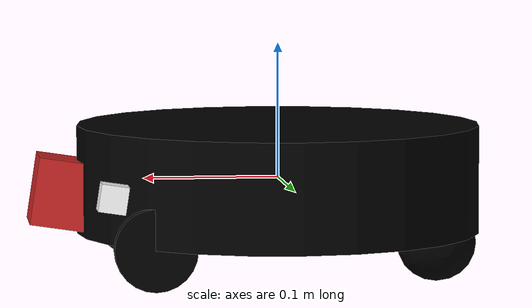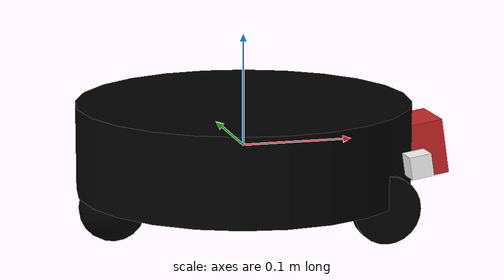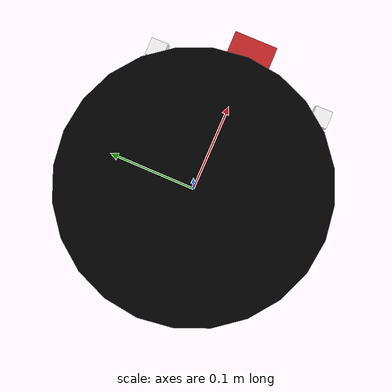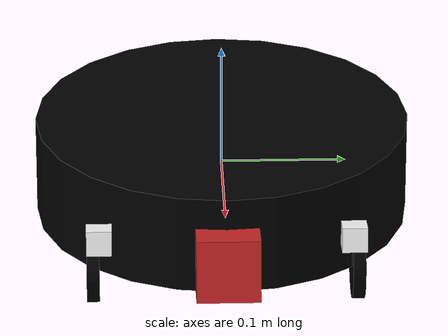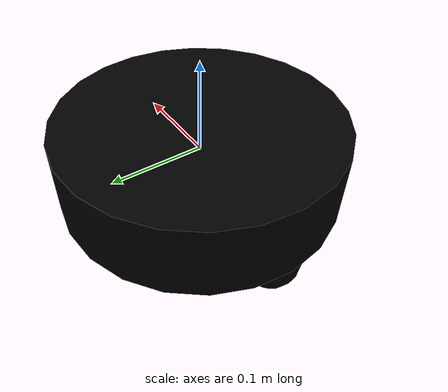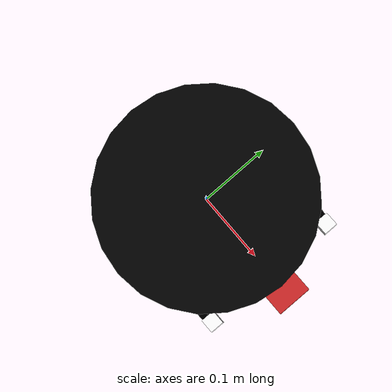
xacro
<?xml version="1.0"?>
<robot name="tango_xacro" xmlns:xacro="http://ros.org/wiki/xacro">

  <xacro:property name="body_diameter" value="0.3" />
  <xacro:property name="body_height" value="0.08" />
  <xacro:property name="traction_wheel_radius" value="0.03" />
  <xacro:property name="traction_wheel_width" value="0.01" />
  <xacro:property name="aux_wheel_radius" value="0.03" />
  <xacro:property name="camera_link" value="0.05" />

  <xacro:include filename="materials.xacro" />
  <xacro:include filename="inertials.xacro" />

  <xacro:macro name="inertial_cube" params="mass">
    <inertial>
      <mass value="${mass}" />
      <inertia ixx="1.0" ixy="0.0" ixz="0.0" iyy="1.0" iyz="0.0" izz="1.0" />
    </inertial>
  </xacro:macro>

  <link name="main_body">
    <visual>
      <geometry>
        <cylinder radius="${body_diameter/2}" length="${body_height}"/>
      </geometry>
      <material name="black"/>
    </visual>
    <collision>
      <geometry>
        <cylinder radius="${body_diameter/2}" length="${body_height}"/>
      </geometry>
    </collision>
  </link>

  <!-- Dummy link just for inertial purposes -->
  <link name="dummy_link">
    <visual>
      <geometry>
        <box size="0.05 0.05 0.05"/>
      </geometry>
      <origin xyz="0 0 0"/>
      <material name="white"/>
    </visual>
    <collision>
      <geometry>
        <box size="0.05 0.05 0.05"/>
      </geometry>
      <origin xyz="0 0 0"/>
    </collision>
    <xacro:inertial_cylinder mass="2" radius="${body_diameter/2}" height="${body_height}" />
  </link>

  <joint name="dummy_base_joint" type="fixed">
    <axis rpy="0 0 0" xyz="0 0 1"/>
    <parent link="main_body"/>
    <child link="dummy_link"/>
    <origin xyz="0 0 -0.02" />
  </joint>

  <xacro:macro name="front_sensor_link" params="name side y_pos">
    <link name="${name}_front_sensor">
      <visual>
        <geometry>
          <box size="0.02 0.02 0.02"/>
        </geometry>
        <origin xyz="-0.02 0 0" rpy="0 0 0"/>
        <material name="white"/>
      </visual>
      <collision>
        <geometry>
          <box size="0.02 0.02 0.02"/>
        </geometry>
        <origin xyz="-0.02 0 0" rpy="0 0 0"/>
      </collision>
    </link>

    <joint name="${side}_front_base_joint" type="fixed">
      <axis rpy="0 0 0" xyz="0 0 0"/>
      <parent link="main_body"/>
      <child link="${name}_front_sensor"/>
      <origin xyz="${body_diameter/2} ${side*y_pos} 0" rpy="0 -0.15 0" />
    </joint>

    <gazebo reference="${name}_front_sensor">
     <sensor type="ray" name="TeraRanger">
      <pose>0 0 0 0 0 0</pose>
      <visualize>true</visualize>
      <update_rate>50</update_rate>
      <ray>
         <scan>
            <horizontal>
               <samples>10</samples>
               <resolution>1</resolution>
               <min_angle>-0.14835</min_angle>
               <max_angle>0.14835</max_angle>
            </horizontal>
            <vertical>
               <samples>10</samples>
               <resolution>1</resolution>
               <min_angle>-0.14835</min_angle>
               <max_angle>0.14835</max_angle>
            </vertical>
         </scan>
         <range>
            <min>0.05</min>
            <max>2</max>
            <resolution>0.01</resolution>
         </range>
      </ray>
      <plugin filename="libgazebo_ros_range.so" name="gazebo_ros_range">
        <gaussianNoise>0.005</gaussianNoise>
        <alwaysOn>true</alwaysOn>
        <updateRate>50</updateRate>
        <topicName>sensor/${name}_ultrasonic_front</topicName>
        <frameName>${name}_front_sensor</frameName>
        <radiation>ULTRASOUND</radiation>
        <fov>0.2967</fov>
      </plugin>
     </sensor>
   </gazebo>

  </xacro:macro>

  <!-- Camera -->
  <link name="camera_link">
    <collision>
      <origin xyz="0 0 0" rpy="0 0 0"/>
      <geometry>
    <box size="${camera_link} ${camera_link} ${camera_link}"/>
      </geometry>
    </collision>
    <visual>
      <origin xyz="0 0 ${-camera_link}" rpy="0 0 0"/>
      <geometry>
    <box size="${camera_link} ${camera_link} ${camera_link}"/>
      </geometry>
      <material name="red"/>
    </visual>
    <inertial>
      <mass value="1e-5"/>
      <origin xyz="0 0 0" rpy="0 0 0"/>
      <inertia ixx="1e-6" ixy="0" ixz="0" iyy="1e-6" iyz="0" izz="1e-6" />
    </inertial>
  </link>

  <joint name="camera_joint" type="fixed">
    <axis xyz="0 1 0" />
    <origin xyz="${body_diameter/2} 0 ${body_height/2}" rpy="0 -0.15 0"/>
    <parent link="main_body"/>
    <child link="camera_link"/>
  </joint>

  <!-- camera -->
  <gazebo reference="camera_link">
    <sensor type="camera" name="camera1">
      <update_rate>30.0</update_rate>
      <camera name="head">
        <horizontal_fov>1.3962634</horizontal_fov>
        <image>
          <width>800</width>
          <height>800</height>
          <format>R8G8B8</format>
        </image>
        <clip>
          <near>0.02</near>
          <far>300</far>
        </clip>
        <noise>
          <type>gaussian</type>
          <!-- Noise is sampled independently per pixel on each frame.
               That pixel's noise value is added to each of its color
               channels, which at that point lie in the range [0,1]. -->
          <mean>0.0</mean>
          <stddev>0.007</stddev>
        </noise>
      </camera>
      <plugin name="camera_controller" filename="libgazebo_ros_camera.so">
        <alwaysOn>true</alwaysOn>
        <updateRate>0.0</updateRate>
        <cameraName>sensor/camera1</cameraName>
        <imageTopicName>image_raw</imageTopicName>
        <cameraInfoTopicName>camera_info</cameraInfoTopicName>
        <frameName>camera_link</frameName>
        <hackBaseline>0.07</hackBaseline>
        <distortionK1>0.0</distortionK1>
        <distortionK2>0.0</distortionK2>
        <distortionK3>0.0</distortionK3>
        <distortionT1>0.0</distortionT1>
        <distortionT2>0.0</distortionT2>
      </plugin>
    </sensor>
  </gazebo>

  <!-- IMU -->
  <gazebo>
    <plugin name="imu_plugin" filename="libgazebo_ros_imu.so">
      <alwaysOn>true</alwaysOn>
      <bodyName>main_body</bodyName>
      <topicName>imu</topicName>
      <serviceName>imu_service</serviceName>
      <gaussianNoise>0.0</gaussianNoise>
      <updateRate>20.0</updateRate>
    </plugin>
  </gazebo>

  <!-- GPS -->
  <gazebo>
    <plugin name="gps_controller" filename="libhector_gazebo_ros_gps.so">
      <alwayson>true</alwayson>
      <updaterate>1.0</updaterate>
      <bodyname>main_body</bodyname>
      <topicname>fix</topicname>
      <velocitytopicname>/fix_velocity</velocitytopicname>
      <drift>5.0 5.0 5.0</drift>
      <gaussiannoise>0.1 0.1 0.1</gaussiannoise>
      <velocitydrift>0 0 0</velocitydrift>
      <velocitygaussiannoise>0.1 0.1 0.1</velocitygaussiannoise>
    </plugin>
  </gazebo>

  <xacro:macro name="aux_wheel" params="side reflect">

    <link name="${side}_aux_wheel">
      <visual>
        <origin xyz="0 0 0" rpy="${pi/2} 0 0" />
        <geometry>
          <sphere radius="${aux_wheel_radius}"/>
        </geometry>
        <material name="black"/>
      </visual>
      <collision>
        <origin xyz="0 0 0" rpy="${pi/2} 0 0" />
        <geometry>
          <sphere radius="${aux_wheel_radius}"/>
        </geometry>
      </collision>
      <xacro:inertial_sphere mass="0.05" radius="${aux_wheel_radius}" />
    </link>
    <joint name="${side}_aux_wheel_joint" type="continuous">
      <parent link="main_body"/>
      <child link="${side}_aux_wheel"/>
      <axis xyz="0 1 0" rpy="0 0 0" />
      <!-- origin xyz="${-body_diameter/2+0.05} ${reflect*0.01} -0.05" rpy="0 0 0"/ -->
      <origin xyz="-0.12 ${reflect*0.01} -0.05" rpy="0 0 0"/>
    </joint>

    <!-- This block provides the simulator (Gazebo) with information on a few additional
    physical properties. See http://gazebosim.org/tutorials/?tut=ros_urdf for more-->
    <gazebo reference="${side}_aux_wheel">
      <mu1 value="1.0"/>
      <mu2 value="1.0"/>
      <kp value="1000000.0" />
      <kd value="100.0" />
      <material>Gazebo/Grey</material>
    </gazebo>

  </xacro:macro>

  <xacro:macro name="traction_wheel" params="side reflect">

    <link name="${side}_traction_wheel">
      <visual>
        <origin xyz="0 ${reflect*traction_wheel_width/2} 0" rpy="${pi/2} 0 0" />
        <geometry>
          <cylinder radius="${traction_wheel_radius}" length="${traction_wheel_width}"/>
        </geometry>
        <material name="black"/>
      </visual>
      <collision>
        <origin xyz="0 ${reflect*traction_wheel_width/2} 0" rpy="${pi/2} 0 0" />
        <geometry>
          <cylinder radius="${traction_wheel_radius}" length="${traction_wheel_width}"/>
        </geometry>
      </collision>
    <xacro:inertial_cylinder_y_axis mass="0.1" radius="${traction_wheel_radius}" height="${traction_wheel_width}" />
   </link>
    <joint name="${side}_traction_wheel_joint" type="continuous">
      <axis xyz="0 1 0" rpy="0 0 0" />
      <parent link="main_body"/>
      <child link="${side}_traction_wheel"/>
      <origin xyz="${body_diameter/3} ${reflect*(body_diameter/3)} ${-body_height/2}" rpy="0 0 0"/>
    </joint>

    <!-- This block provides the simulator (Gazebo) with information on a few additional
    physical properties. See http://gazebosim.org/tutorials/?tut=ros_urdf for more-->
    <gazebo reference="${side}_traction_wheel">
      <mu1 value="300.0"/>
      <mu2 value="100.0"/>
      <kp value="10000000.0" />
      <kd value="100.0" />
      <material>Gazebo/Black</material>
    </gazebo>

    <!-- This block connects the wheel joint to an actuator (motor), which informs both
    simulation and visualization of the robot -->
    <transmission name="${side}_traction_wheel_trans">
      <type>transmission_interface/SimpleTransmission</type>
      <actuator name="${side}_traction_wheel_motor">
        <mechanicalReduction>1</mechanicalReduction>
      </actuator>
      <joint name="${side}_traction_wheel_joint">
        <hardwareInterface>hardware_interface/VelocityJointInterface</hardwareInterface>
      </joint>
    </transmission>

  </xacro:macro>

  <xacro:traction_wheel side="left" reflect="-1"/>
  <xacro:traction_wheel side="right" reflect="1"/>

  <xacro:aux_wheel side="center" reflect="0"/>

  <xacro:front_sensor_link name="ultra_1" side="-1" y_pos="0.1" />
  <xacro:front_sensor_link name="ultra_2" side="1" y_pos="0.1" />

  <!-- Gazebo plugin for ROS Control -->
  <gazebo>
    <plugin name="gazebo_ros_control" filename="libgazebo_ros_control.so">
      <robotNamespace>/</robotNamespace>
    </plugin>
  </gazebo>

</robot>

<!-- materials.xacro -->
<robot name="materials" xmlns:xacro="http://ros.org/wiki/xacro">

  <material name="blue">
    <color rgba="0 0 0.8 1"/>
  </material>

  <material name="black">
    <color rgba="0 0 0 1"/>
  </material>

  <material name="green">
    <color rgba="0 1 0 1"/>
  </material>

  <material name="grey">
    <color rgba=".2 .2 .2 1"/>
  </material>

  <material name="white">
    <color rgba="1 1 1 1"/>
  </material>

</robot>

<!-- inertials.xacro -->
<robot name="materials" xmlns:xacro="http://ros.org/wiki/xacro">

  <xacro:macro name="inertial_cuboid" params="mass len width height">
    <inertial>
      <mass value="${mass}" />
      <inertia ixx="${mass*(height*height+len*len)/12}" ixy="0.0" ixz="0.0" iyy="${mass*(width*width+len*len)/12}" iyz="0.0" izz="${mass*(width*width+height*height)/12}" />
    </inertial>
  </xacro:macro>

  <xacro:macro name="inertial_sphere" params="mass radius">
    <inertial>
      <mass value="${mass}" />
      <inertia ixx="${2*mass*radius*radius/5}" ixy="0.0" ixz="0.0" iyy="${2*mass*radius*radius/5}" iyz="0.0" izz="${2*mass*radius*radius/5}"/>
    </inertial>
  </xacro:macro>

  <!-- Inercial tensor of a cylinder with the radius in the xy plane) -->
  <xacro:macro name="inertial_cylinder" params="mass radius height">
    <inertial>
      <mass value="${mass}" />
      <inertia ixx="${mass*(3*radius*radius+height*height)/12}" ixy="0.0" ixz="0.0" iyy="${mass*(3*radius*radius+height*height)/12}" iyz="0.0" izz="${mass*radius*radius/2}" />
    </inertial>
  </xacro:macro>

  <!-- Inercial tensor of a cylinder rotating about y axis (i.e. wheels) -->
  <xacro:macro name="inertial_cylinder_y_axis" params="mass radius height">
    <inertial>
      <mass value="${mass}" />
      <inertia ixx="${mass*(3*radius*radius+height*height)/12}" ixy="0.0" ixz="0.0" iyy="${mass*radius*radius/2}" iyz="0.0" izz="${mass*(3*radius*radius+height*height)/12}" />
    </inertial>
  </xacro:macro>

</robot>
